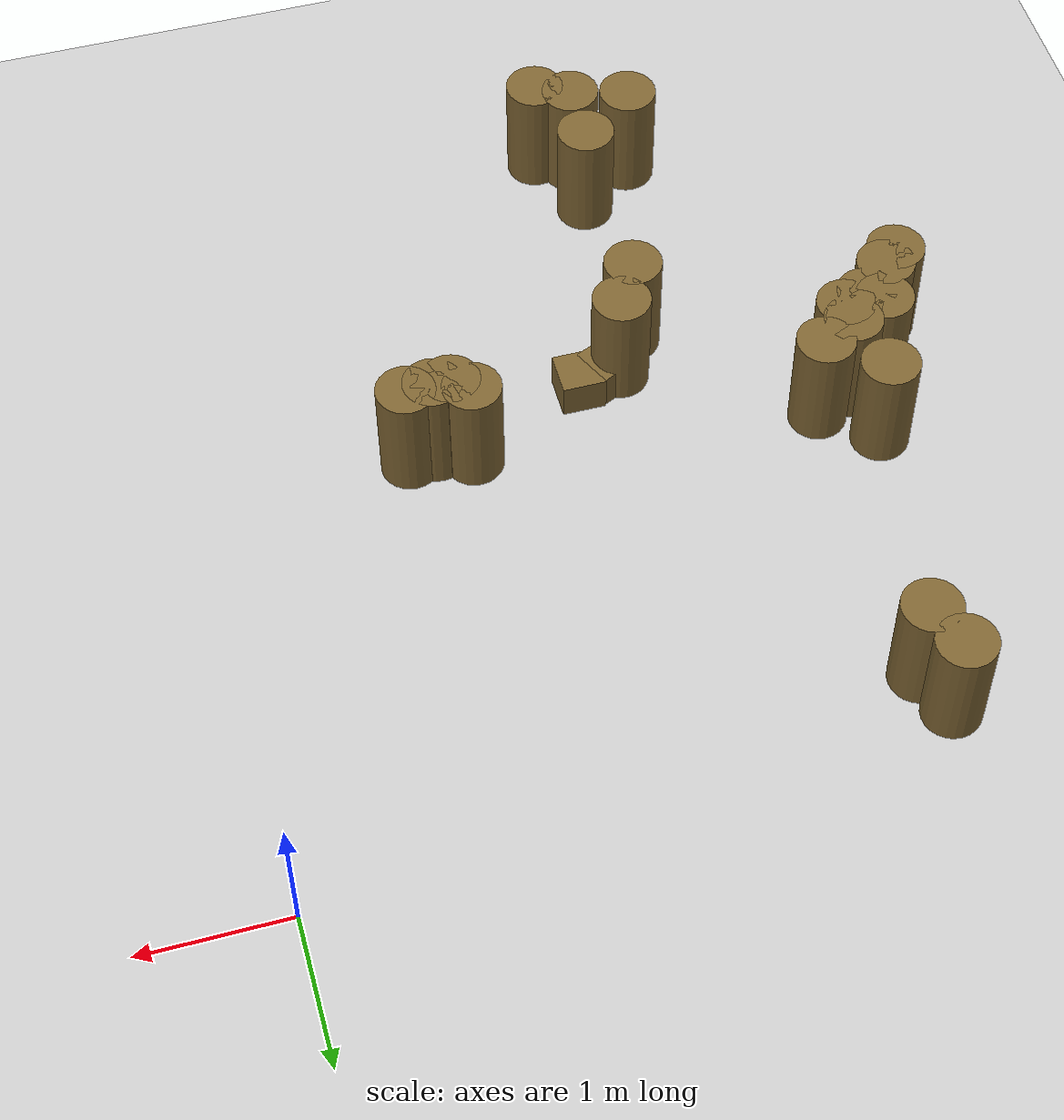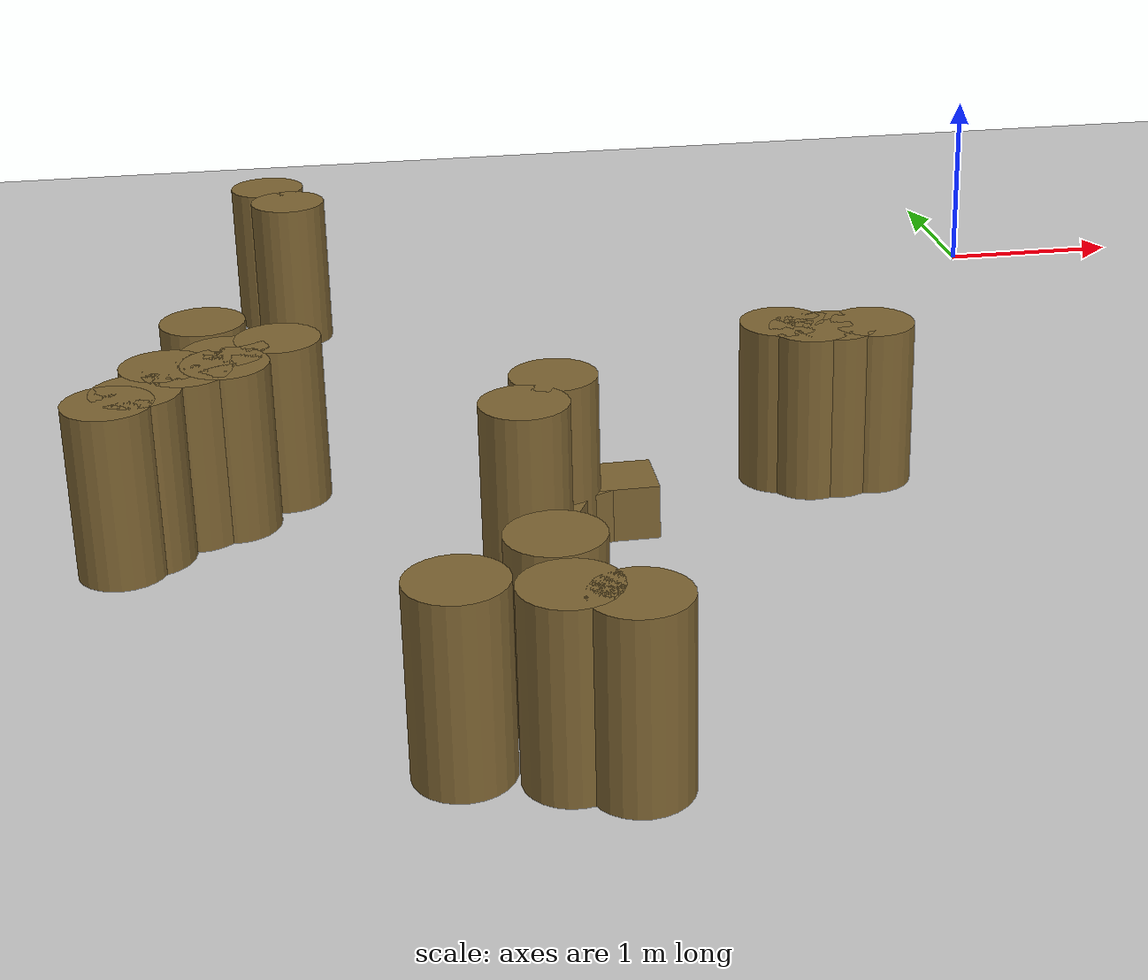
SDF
<sdf version="1.7">
 <world name="default">
  <model name="ground_plane">
   <static>1</static>
   <link name="link">
    <collision name="collision">
     <geometry><plane><normal>0 0 1</normal><size>100 100</size></plane></geometry>
     <surface><friction><ode><mu>100</mu><mu2>50</mu2></ode></friction></surface>
    </collision>
    <visual name="visual">
     <cast_shadows>0</cast_shadows>
     <geometry><plane><normal>0 0 1</normal><size>100 100</size></plane></geometry>
     <material>
      <script><uri>file://media/materials/scripts/gazebo.material</uri><name>Gazebo/Grey</name></script>
     </material>
    </visual>
   </link>
  </model>
  <model name="mini_cylinder_0_clone_0_clone_clone_clone_clone_12_clone_1">
   <link name="link">
    <inertial>
     <mass>1</mass>
     <inertia><ixx>0.145833</ixx><ixy>0</ixy><ixz>0</ixz><iyy>0.145833</iyy><iyz>0</iyz><izz>0.125</izz></inertia>
    </inertial>
    <visual name="visual">
     <geometry><cylinder><radius>0.2</radius><length>0.8</length></cylinder></geometry>
     <material>
      <script><name>Gazebo/Grey</name><uri>file://media/materials/scripts/gazebo.material</uri></script>
      <shader type="vertex"><normal_map>__default__</normal_map></shader>
      <ambient>0.5 0.4 0.2 1</ambient>
      <diffuse>0.7 0.7 0.7 1</diffuse>
      <specular>0.01 0.01 0.01 1</specular>
      <emissive>0 0 0 1</emissive>
     </material>
    </visual>
    <collision name="collision">
     <geometry><cylinder><radius>0.2</radius><length>0.8</length></cylinder></geometry>
     <surface>
      <friction>
       <ode><mu>1</mu><mu2>1</mu2><fdir1>0 0 0</fdir1><slip1>0</slip1><slip2>0</slip2></ode>
       <torsional>
        <coefficient>1</coefficient>
        <patch_radius>0</patch_radius>
        <surface_radius>0</surface_radius>
        <use_patch_radius>1</use_patch_radius>
        <ode><slip>0</slip></ode>
       </torsional>
      </friction>
      <bounce><restitution_coefficient>0</restitution_coefficient><threshold>1e+06</threshold></bounce>
      <contact>
       <collide_without_contact>0</collide_without_contact>
       <collide_without_contact_bitmask>1</collide_without_contact_bitmask>
       <collide_bitmask>1</collide_bitmask>
       <ode>
        <soft_cfm>0</soft_cfm>
        <soft_erp>0.2</soft_erp>
        <kp>1e+13</kp>
        <kd>1</kd>
        <max_vel>0.01</max_vel>
        <min_depth>0</min_depth>
       </ode>
       <bullet>
        <split_impulse>1</split_impulse>
        <split_impulse_penetration_threshold>-0.01</split_impulse_penetration_threshold>
        <soft_cfm>0</soft_cfm>
        <soft_erp>0.2</soft_erp>
        <kp>1e+13</kp>
        <kd>1</kd>
       </bullet>
      </contact>
     </surface>
    </collision>
   </link>
   <static>1</static>
   <pose>-1.42341 -3.10172 0.4 0 -0 0</pose>
  </model>
  <model name="mini_cylinder_0_clone_0_clone_clone_clone_clone_clone_28">
   <link name="link">
    <inertial>
     <mass>1</mass>
     <inertia><ixx>0.145833</ixx><ixy>0</ixy><ixz>0</ixz><iyy>0.145833</iyy><iyz>0</iyz><izz>0.125</izz></inertia>
    </inertial>
    <visual name="visual">
     <geometry><cylinder><radius>0.2</radius><length>0.8</length></cylinder></geometry>
     <material>
      <script><name>Gazebo/Grey</name><uri>file://media/materials/scripts/gazebo.material</uri></script>
      <shader type="vertex"><normal_map>__default__</normal_map></shader>
      <ambient>0.5 0.4 0.2 1</ambient>
      <diffuse>0.7 0.7 0.7 1</diffuse>
      <specular>0.01 0.01 0.01 1</specular>
      <emissive>0 0 0 1</emissive>
     </material>
    </visual>
    <collision name="collision">
     <geometry><cylinder><radius>0.2</radius><length>0.8</length></cylinder></geometry>
     <surface>
      <friction>
       <ode><mu>1</mu><mu2>1</mu2><fdir1>0 0 0</fdir1><slip1>0</slip1><slip2>0</slip2></ode>
       <torsional>
        <coefficient>1</coefficient>
        <patch_radius>0</patch_radius>
        <surface_radius>0</surface_radius>
        <use_patch_radius>1</use_patch_radius>
        <ode><slip>0</slip></ode>
       </torsional>
      </friction>
      <bounce><restitution_coefficient>0</restitution_coefficient><threshold>1e+06</threshold></bounce>
      <contact>
       <collide_without_contact>0</collide_without_contact>
       <collide_without_contact_bitmask>1</collide_without_contact_bitmask>
       <collide_bitmask>1</collide_bitmask>
       <ode>
        <soft_cfm>0</soft_cfm>
        <soft_erp>0.2</soft_erp>
        <kp>1e+13</kp>
        <kd>1</kd>
        <max_vel>0.01</max_vel>
        <min_depth>0</min_depth>
       </ode>
       <bullet>
        <split_impulse>1</split_impulse>
        <split_impulse_penetration_threshold>-0.01</split_impulse_penetration_threshold>
        <soft_cfm>0</soft_cfm>
        <soft_erp>0.2</soft_erp>
        <kp>1e+13</kp>
        <kd>1</kd>
       </bullet>
      </contact>
     </surface>
    </collision>
   </link>
   <static>1</static>
   <pose>-4.2213 -0.316603 0.4 0 -0 0</pose>
  </model>
  <model name="mini_cylinder_0_clone_0_clone_clone_clone_clone_clone_29">
   <link name="link">
    <inertial>
     <mass>1</mass>
     <inertia><ixx>0.145833</ixx><ixy>0</ixy><ixz>0</ixz><iyy>0.145833</iyy><iyz>0</iyz><izz>0.125</izz></inertia>
    </inertial>
    <visual name="visual">
     <geometry><cylinder><radius>0.2</radius><length>0.8</length></cylinder></geometry>
     <material>
      <script><name>Gazebo/Grey</name><uri>file://media/materials/scripts/gazebo.material</uri></script>
      <shader type="vertex"><normal_map>__default__</normal_map></shader>
      <ambient>0.5 0.4 0.2 1</ambient>
      <diffuse>0.7 0.7 0.7 1</diffuse>
      <specular>0.01 0.01 0.01 1</specular>
      <emissive>0 0 0 1</emissive>
     </material>
    </visual>
    <collision name="collision">
     <geometry><cylinder><radius>0.2</radius><length>0.8</length></cylinder></geometry>
     <surface>
      <friction>
       <ode><mu>1</mu><mu2>1</mu2><fdir1>0 0 0</fdir1><slip1>0</slip1><slip2>0</slip2></ode>
       <torsional>
        <coefficient>1</coefficient>
        <patch_radius>0</patch_radius>
        <surface_radius>0</surface_radius>
        <use_patch_radius>1</use_patch_radius>
        <ode><slip>0</slip></ode>
       </torsional>
      </friction>
      <bounce><restitution_coefficient>0</restitution_coefficient><threshold>1e+06</threshold></bounce>
      <contact>
       <collide_without_contact>0</collide_without_contact>
       <collide_without_contact_bitmask>1</collide_without_contact_bitmask>
       <collide_bitmask>1</collide_bitmask>
       <ode>
        <soft_cfm>0</soft_cfm>
        <soft_erp>0.2</soft_erp>
        <kp>1e+13</kp>
        <kd>1</kd>
        <max_vel>0.01</max_vel>
        <min_depth>0</min_depth>
       </ode>
       <bullet>
        <split_impulse>1</split_impulse>
        <split_impulse_penetration_threshold>-0.01</split_impulse_penetration_threshold>
        <soft_cfm>0</soft_cfm>
        <soft_erp>0.2</soft_erp>
        <kp>1e+13</kp>
        <kd>1</kd>
       </bullet>
      </contact>
     </surface>
    </collision>
   </link>
   <static>1</static>
   <pose>-4.1112 -0.615441 0.4 0 -0 0</pose>
  </model>
  <model name="mini_cylinder_0_clone_0_clone_clone_clone_clone_clone_35">
   <link name="link">
    <inertial>
     <mass>1</mass>
     <inertia><ixx>0.145833</ixx><ixy>0</ixy><ixz>0</ixz><iyy>0.145833</iyy><iyz>0</iyz><izz>0.125</izz></inertia>
    </inertial>
    <visual name="visual">
     <geometry><cylinder><radius>0.2</radius><length>0.8</length></cylinder></geometry>
     <material>
      <script><name>Gazebo/Grey</name><uri>file://media/materials/scripts/gazebo.material</uri></script>
      <shader type="vertex"><normal_map>__default__</normal_map></shader>
      <ambient>0.5 0.4 0.2 1</ambient>
      <diffuse>0.7 0.7 0.7 1</diffuse>
      <specular>0.01 0.01 0.01 1</specular>
      <emissive>0 0 0 1</emissive>
     </material>
    </visual>
    <collision name="collision">
     <geometry><cylinder><radius>0.2</radius><length>0.8</length></cylinder></geometry>
     <surface>
      <friction>
       <ode><mu>1</mu><mu2>1</mu2><fdir1>0 0 0</fdir1><slip1>0</slip1><slip2>0</slip2></ode>
       <torsional>
        <coefficient>1</coefficient>
        <patch_radius>0</patch_radius>
        <surface_radius>0</surface_radius>
        <use_patch_radius>1</use_patch_radius>
        <ode><slip>0</slip></ode>
       </torsional>
      </friction>
      <bounce><restitution_coefficient>0</restitution_coefficient><threshold>1e+06</threshold></bounce>
      <contact>
       <collide_without_contact>0</collide_without_contact>
       <collide_without_contact_bitmask>1</collide_without_contact_bitmask>
       <collide_bitmask>1</collide_bitmask>
       <ode>
        <soft_cfm>0</soft_cfm>
        <soft_erp>0.2</soft_erp>
        <kp>1e+13</kp>
        <kd>1</kd>
        <max_vel>0.01</max_vel>
        <min_depth>0</min_depth>
       </ode>
       <bullet>
        <split_impulse>1</split_impulse>
        <split_impulse_penetration_threshold>-0.01</split_impulse_penetration_threshold>
        <soft_cfm>0</soft_cfm>
        <soft_erp>0.2</soft_erp>
        <kp>1e+13</kp>
        <kd>1</kd>
       </bullet>
      </contact>
     </surface>
    </collision>
   </link>
   <static>1</static>
   <pose>-3.18297 -5.05082 0.4 0 -0 0</pose>
  </model>
  <model name="mini_cylinder_0_clone_0_clone_clone_clone_clone_clone_36">
   <link name="link">
    <inertial>
     <mass>1</mass>
     <inertia><ixx>0.145833</ixx><ixy>0</ixy><ixz>0</ixz><iyy>0.145833</iyy><iyz>0</iyz><izz>0.125</izz></inertia>
    </inertial>
    <visual name="visual">
     <geometry><cylinder><radius>0.2</radius><length>0.8</length></cylinder></geometry>
     <material>
      <script><name>Gazebo/Grey</name><uri>file://media/materials/scripts/gazebo.material</uri></script>
      <shader type="vertex"><normal_map>__default__</normal_map></shader>
      <ambient>0.5 0.4 0.2 1</ambient>
      <diffuse>0.7 0.7 0.7 1</diffuse>
      <specular>0.01 0.01 0.01 1</specular>
      <emissive>0 0 0 1</emissive>
     </material>
    </visual>
    <collision name="collision">
     <geometry><cylinder><radius>0.2</radius><length>0.8</length></cylinder></geometry>
     <surface>
      <friction>
       <ode><mu>1</mu><mu2>1</mu2><fdir1>0 0 0</fdir1><slip1>0</slip1><slip2>0</slip2></ode>
       <torsional>
        <coefficient>1</coefficient>
        <patch_radius>0</patch_radius>
        <surface_radius>0</surface_radius>
        <use_patch_radius>1</use_patch_radius>
        <ode><slip>0</slip></ode>
       </torsional>
      </friction>
      <bounce><restitution_coefficient>0</restitution_coefficient><threshold>1e+06</threshold></bounce>
      <contact>
       <collide_without_contact>0</collide_without_contact>
       <collide_without_contact_bitmask>1</collide_without_contact_bitmask>
       <collide_bitmask>1</collide_bitmask>
       <ode>
        <soft_cfm>0</soft_cfm>
        <soft_erp>0.2</soft_erp>
        <kp>1e+13</kp>
        <kd>1</kd>
        <max_vel>0.01</max_vel>
        <min_depth>0</min_depth>
       </ode>
       <bullet>
        <split_impulse>1</split_impulse>
        <split_impulse_penetration_threshold>-0.01</split_impulse_penetration_threshold>
        <soft_cfm>0</soft_cfm>
        <soft_erp>0.2</soft_erp>
        <kp>1e+13</kp>
        <kd>1</kd>
       </bullet>
      </contact>
     </surface>
    </collision>
   </link>
   <static>1</static>
   <pose>-3.57618 -5.34966 0.4 0 -0 0</pose>
  </model>
  <model name="mini_cylinder_0_clone_0_clone_clone_clone_clone_clone_37">
   <link name="link">
    <inertial>
     <mass>1</mass>
     <inertia><ixx>0.145833</ixx><ixy>0</ixy><ixz>0</ixz><iyy>0.145833</iyy><iyz>0</iyz><izz>0.125</izz></inertia>
    </inertial>
    <visual name="visual">
     <geometry><cylinder><radius>0.2</radius><length>0.8</length></cylinder></geometry>
     <material>
      <script><name>Gazebo/Grey</name><uri>file://media/materials/scripts/gazebo.material</uri></script>
      <shader type="vertex"><normal_map>__default__</normal_map></shader>
      <ambient>0.5 0.4 0.2 1</ambient>
      <diffuse>0.7 0.7 0.7 1</diffuse>
      <specular>0.01 0.01 0.01 1</specular>
      <emissive>0 0 0 1</emissive>
     </material>
    </visual>
    <collision name="collision">
     <geometry><cylinder><radius>0.2</radius><length>0.8</length></cylinder></geometry>
     <surface>
      <friction>
       <ode><mu>1</mu><mu2>1</mu2><fdir1>0 0 0</fdir1><slip1>0</slip1><slip2>0</slip2></ode>
       <torsional>
        <coefficient>1</coefficient>
        <patch_radius>0</patch_radius>
        <surface_radius>0</surface_radius>
        <use_patch_radius>1</use_patch_radius>
        <ode><slip>0</slip></ode>
       </torsional>
      </friction>
      <bounce><restitution_coefficient>0</restitution_coefficient><threshold>1e+06</threshold></bounce>
      <contact>
       <collide_without_contact>0</collide_without_contact>
       <collide_without_contact_bitmask>1</collide_without_contact_bitmask>
       <collide_bitmask>1</collide_bitmask>
       <ode>
        <soft_cfm>0</soft_cfm>
        <soft_erp>0.2</soft_erp>
        <kp>1e+13</kp>
        <kd>1</kd>
        <max_vel>0.01</max_vel>
        <min_depth>0</min_depth>
       </ode>
       <bullet>
        <split_impulse>1</split_impulse>
        <split_impulse_penetration_threshold>-0.01</split_impulse_penetration_threshold>
        <soft_cfm>0</soft_cfm>
        <soft_erp>0.2</soft_erp>
        <kp>1e+13</kp>
        <kd>1</kd>
       </bullet>
      </contact>
     </surface>
    </collision>
   </link>
   <static>1</static>
   <pose>-3.18297 -5.45976 0.4 0 -0 0</pose>
  </model>
  <model name="mini_cylinder_0_clone_0_clone_clone_clone_clone_clone_45">
   <link name="link">
    <inertial>
     <mass>1</mass>
     <inertia><ixx>0.145833</ixx><ixy>0</ixy><ixz>0</ixz><iyy>0.145833</iyy><iyz>0</iyz><izz>0.125</izz></inertia>
    </inertial>
    <visual name="visual">
     <geometry><cylinder><radius>0.2</radius><length>0.8</length></cylinder></geometry>
     <material>
      <script><name>Gazebo/Grey</name><uri>file://media/materials/scripts/gazebo.material</uri></script>
      <shader type="vertex"><normal_map>__default__</normal_map></shader>
      <ambient>0.5 0.4 0.2 1</ambient>
      <diffuse>0.7 0.7 0.7 1</diffuse>
      <specular>0.01 0.01 0.01 1</specular>
      <emissive>0 0 0 1</emissive>
     </material>
    </visual>
    <collision name="collision">
     <geometry><cylinder><radius>0.2</radius><length>0.8</length></cylinder></geometry>
     <surface>
      <friction>
       <ode><mu>1</mu><mu2>1</mu2><fdir1>0 0 0</fdir1><slip1>0</slip1><slip2>0</slip2></ode>
       <torsional>
        <coefficient>1</coefficient>
        <patch_radius>0</patch_radius>
        <surface_radius>0</surface_radius>
        <use_patch_radius>1</use_patch_radius>
        <ode><slip>0</slip></ode>
       </torsional>
      </friction>
      <bounce><restitution_coefficient>0</restitution_coefficient><threshold>1e+06</threshold></bounce>
      <contact>
       <collide_without_contact>0</collide_without_contact>
       <collide_without_contact_bitmask>1</collide_without_contact_bitmask>
       <collide_bitmask>1</collide_bitmask>
       <ode>
        <soft_cfm>0</soft_cfm>
        <soft_erp>0.2</soft_erp>
        <kp>1e+13</kp>
        <kd>1</kd>
        <max_vel>0.01</max_vel>
        <min_depth>0</min_depth>
       </ode>
       <bullet>
        <split_impulse>1</split_impulse>
        <split_impulse_penetration_threshold>-0.01</split_impulse_penetration_threshold>
        <soft_cfm>0</soft_cfm>
        <soft_erp>0.2</soft_erp>
        <kp>1e+13</kp>
        <kd>1</kd>
       </bullet>
      </contact>
     </surface>
    </collision>
   </link>
   <static>1</static>
   <pose>-4.41355 -3.05901 0.4 0 -0 0</pose>
  </model>
  <model name="mini_box_0.3_clone_9">
   <link name="link">
    <inertial>
     <mass>1</mass>
     <inertia>
      <ixx>0.166667</ixx>
      <ixy>0</ixy>
      <ixz>0</ixz>
      <iyy>0.166667</iyy>
      <iyz>0</iyz>
      <izz>0.166667</izz>
     </inertia>
    </inertial>
    <visual name="visual">
     <geometry><box><size>0.3 0.3 0.5</size></box></geometry>
     <material>
      <script><name>Gazebo/Grey</name><uri>file://media/materials/scripts/gazebo.material</uri></script>
      <shader type="vertex"><normal_map>__default__</normal_map></shader>
      <ambient>0.5 0.4 0.2 1</ambient>
      <diffuse>0.7 0.7 0.7 1</diffuse>
      <specular>0.01 0.01 0.01 1</specular>
      <emissive>0 0 0 1</emissive>
     </material>
    </visual>
    <collision name="collision">
     <geometry><box><size>0.3 0.3 0.3</size></box></geometry>
     <surface>
      <friction>
       <ode><mu>1</mu><mu2>1</mu2><fdir1>0 0 0</fdir1><slip1>0</slip1><slip2>0</slip2></ode>
       <torsional>
        <coefficient>1</coefficient>
        <patch_radius>0</patch_radius>
        <surface_radius>0</surface_radius>
        <use_patch_radius>1</use_patch_radius>
        <ode><slip>0</slip></ode>
       </torsional>
      </friction>
      <bounce><restitution_coefficient>0</restitution_coefficient><threshold>1e+06</threshold></bounce>
      <contact>
       <collide_without_contact>0</collide_without_contact>
       <collide_without_contact_bitmask>1</collide_without_contact_bitmask>
       <collide_bitmask>1</collide_bitmask>
       <ode>
        <soft_cfm>0</soft_cfm>
        <soft_erp>0.2</soft_erp>
        <kp>1e+13</kp>
        <kd>1</kd>
        <max_vel>0.01</max_vel>
        <min_depth>0</min_depth>
       </ode>
       <bullet>
        <split_impulse>1</split_impulse>
        <split_impulse_penetration_threshold>-0.01</split_impulse_penetration_threshold>
        <soft_cfm>0</soft_cfm>
        <soft_erp>0.2</soft_erp>
        <kp>1e+13</kp>
        <kd>1</kd>
       </bullet>
      </contact>
     </surface>
    </collision>
   </link>
   <static>1</static>
   <pose>-2.67643 -3.40611 0 0 -0 0</pose>
  </model>
  <model name="mini_box_0.3_clone_10">
   <link name="link">
    <inertial>
     <mass>1</mass>
     <inertia>
      <ixx>0.166667</ixx>
      <ixy>0</ixy>
      <ixz>0</ixz>
      <iyy>0.166667</iyy>
      <iyz>0</iyz>
      <izz>0.166667</izz>
     </inertia>
    </inertial>
    <visual name="visual">
     <geometry><box><size>0.3 0.3 0.5</size></box></geometry>
     <material>
      <script><name>Gazebo/Grey</name><uri>file://media/materials/scripts/gazebo.material</uri></script>
      <shader type="vertex"><normal_map>__default__</normal_map></shader>
      <ambient>0.5 0.4 0.2 1</ambient>
      <diffuse>0.7 0.7 0.7 1</diffuse>
      <specular>0.01 0.01 0.01 1</specular>
      <emissive>0 0 0 1</emissive>
     </material>
    </visual>
    <collision name="collision">
     <geometry><box><size>0.3 0.3 0.3</size></box></geometry>
     <surface>
      <friction>
       <ode><mu>1</mu><mu2>1</mu2><fdir1>0 0 0</fdir1><slip1>0</slip1><slip2>0</slip2></ode>
       <torsional>
        <coefficient>1</coefficient>
        <patch_radius>0</patch_radius>
        <surface_radius>0</surface_radius>
        <use_patch_radius>1</use_patch_radius>
        <ode><slip>0</slip></ode>
       </torsional>
      </friction>
      <bounce><restitution_coefficient>0</restitution_coefficient><threshold>1e+06</threshold></bounce>
      <contact>
       <collide_without_contact>0</collide_without_contact>
       <collide_without_contact_bitmask>1</collide_without_contact_bitmask>
       <collide_bitmask>1</collide_bitmask>
       <ode>
        <soft_cfm>0</soft_cfm>
        <soft_erp>0.2</soft_erp>
        <kp>1e+13</kp>
        <kd>1</kd>
        <max_vel>0.01</max_vel>
        <min_depth>0</min_depth>
       </ode>
       <bullet>
        <split_impulse>1</split_impulse>
        <split_impulse_penetration_threshold>-0.01</split_impulse_penetration_threshold>
        <soft_cfm>0</soft_cfm>
        <soft_erp>0.2</soft_erp>
        <kp>1e+13</kp>
        <kd>1</kd>
       </bullet>
      </contact>
     </surface>
    </collision>
   </link>
   <static>1</static>
   <pose>-2.89786 -3.46428 0 0 -0 0.442374</pose>
  </model>
  <model name="mini_box_0.3_clone_11">
   <link name="link">
    <inertial>
     <mass>1</mass>
     <inertia>
      <ixx>0.166667</ixx>
      <ixy>0</ixy>
      <ixz>0</ixz>
      <iyy>0.166667</iyy>
      <iyz>0</iyz>
      <izz>0.166667</izz>
     </inertia>
    </inertial>
    <visual name="visual">
     <geometry><box><size>0.3 0.3 0.5</size></box></geometry>
     <material>
      <script><name>Gazebo/Grey</name><uri>file://media/materials/scripts/gazebo.material</uri></script>
      <shader type="vertex"><normal_map>__default__</normal_map></shader>
      <ambient>0.5 0.4 0.2 1</ambient>
      <diffuse>0.7 0.7 0.7 1</diffuse>
      <specular>0.01 0.01 0.01 1</specular>
      <emissive>0 0 0 1</emissive>
     </material>
    </visual>
    <collision name="collision">
     <geometry><box><size>0.3 0.3 0.3</size></box></geometry>
     <surface>
      <friction>
       <ode><mu>1</mu><mu2>1</mu2><fdir1>0 0 0</fdir1><slip1>0</slip1><slip2>0</slip2></ode>
       <torsional>
        <coefficient>1</coefficient>
        <patch_radius>0</patch_radius>
        <surface_radius>0</surface_radius>
        <use_patch_radius>1</use_patch_radius>
        <ode><slip>0</slip></ode>
       </torsional>
      </friction>
      <bounce><restitution_coefficient>0</restitution_coefficient><threshold>1e+06</threshold></bounce>
      <contact>
       <collide_without_contact>0</collide_without_contact>
       <collide_without_contact_bitmask>1</collide_without_contact_bitmask>
       <collide_bitmask>1</collide_bitmask>
       <ode>
        <soft_cfm>0</soft_cfm>
        <soft_erp>0.2</soft_erp>
        <kp>1e+13</kp>
        <kd>1</kd>
        <max_vel>0.01</max_vel>
        <min_depth>0</min_depth>
       </ode>
       <bullet>
        <split_impulse>1</split_impulse>
        <split_impulse_penetration_threshold>-0.01</split_impulse_penetration_threshold>
        <soft_cfm>0</soft_cfm>
        <soft_erp>0.2</soft_erp>
        <kp>1e+13</kp>
        <kd>1</kd>
       </bullet>
      </contact>
     </surface>
    </collision>
   </link>
   <static>1</static>
   <pose>-3.01607 -3.60093 0 0 -0 1.14915</pose>
  </model>
  <model name="mini_cylinder_0_clone_0_clone_clone_clone_clone_clone_49_clone_14">
   <link name="link">
    <inertial>
     <mass>1</mass>
     <inertia><ixx>0.145833</ixx><ixy>0</ixy><ixz>0</ixz><iyy>0.145833</iyy><iyz>0</iyz><izz>0.125</izz></inertia>
    </inertial>
    <visual name="visual">
     <geometry><cylinder><radius>0.2</radius><length>0.8</length></cylinder></geometry>
     <material>
      <script><name>Gazebo/Grey</name><uri>file://media/materials/scripts/gazebo.material</uri></script>
      <shader type="vertex"><normal_map>__default__</normal_map></shader>
      <ambient>0.5 0.4 0.2 1</ambient>
      <diffuse>0.7 0.7 0.7 1</diffuse>
      <specular>0.01 0.01 0.01 1</specular>
      <emissive>0 0 0 1</emissive>
     </material>
    </visual>
    <collision name="collision">
     <geometry><cylinder><radius>0.2</radius><length>0.8</length></cylinder></geometry>
     <surface>
      <friction>
       <ode><mu>1</mu><mu2>1</mu2><fdir1>0 0 0</fdir1><slip1>0</slip1><slip2>0</slip2></ode>
       <torsional>
        <coefficient>1</coefficient>
        <patch_radius>0</patch_radius>
        <surface_radius>0</surface_radius>
        <use_patch_radius>1</use_patch_radius>
        <ode><slip>0</slip></ode>
       </torsional>
      </friction>
      <bounce><restitution_coefficient>0</restitution_coefficient><threshold>1e+06</threshold></bounce>
      <contact>
       <collide_without_contact>0</collide_without_contact>
       <collide_without_contact_bitmask>1</collide_without_contact_bitmask>
       <collide_bitmask>1</collide_bitmask>
       <ode>
        <soft_cfm>0</soft_cfm>
        <soft_erp>0.2</soft_erp>
        <kp>1e+13</kp>
        <kd>1</kd>
        <max_vel>0.01</max_vel>
        <min_depth>0</min_depth>
       </ode>
       <bullet>
        <split_impulse>1</split_impulse>
        <split_impulse_penetration_threshold>-0.01</split_impulse_penetration_threshold>
        <soft_cfm>0</soft_cfm>
        <soft_erp>0.2</soft_erp>
        <kp>1e+13</kp>
        <kd>1</kd>
       </bullet>
      </contact>
     </surface>
    </collision>
   </link>
   <static>1</static>
   <pose>-2.98809 -3.4817 0.4 0 -0 0</pose>
  </model>
  <model name="mini_cylinder_0_clone_0_clone_clone_clone_clone_clone_49_clone_15">
   <link name="link">
    <inertial>
     <mass>1</mass>
     <inertia><ixx>0.145833</ixx><ixy>0</ixy><ixz>0</ixz><iyy>0.145833</iyy><iyz>0</iyz><izz>0.125</izz></inertia>
    </inertial>
    <visual name="visual">
     <geometry><cylinder><radius>0.2</radius><length>0.8</length></cylinder></geometry>
     <material>
      <script><name>Gazebo/Grey</name><uri>file://media/materials/scripts/gazebo.material</uri></script>
      <shader type="vertex"><normal_map>__default__</normal_map></shader>
      <ambient>0.5 0.4 0.2 1</ambient>
      <diffuse>0.7 0.7 0.7 1</diffuse>
      <specular>0.01 0.01 0.01 1</specular>
      <emissive>0 0 0 1</emissive>
     </material>
    </visual>
    <collision name="collision">
     <geometry><cylinder><radius>0.2</radius><length>0.8</length></cylinder></geometry>
     <surface>
      <friction>
       <ode><mu>1</mu><mu2>1</mu2><fdir1>0 0 0</fdir1><slip1>0</slip1><slip2>0</slip2></ode>
       <torsional>
        <coefficient>1</coefficient>
        <patch_radius>0</patch_radius>
        <surface_radius>0</surface_radius>
        <use_patch_radius>1</use_patch_radius>
        <ode><slip>0</slip></ode>
       </torsional>
      </friction>
      <bounce><restitution_coefficient>0</restitution_coefficient><threshold>1e+06</threshold></bounce>
      <contact>
       <collide_without_contact>0</collide_without_contact>
       <collide_without_contact_bitmask>1</collide_without_contact_bitmask>
       <collide_bitmask>1</collide_bitmask>
       <ode>
        <soft_cfm>0</soft_cfm>
        <soft_erp>0.2</soft_erp>
        <kp>1e+13</kp>
        <kd>1</kd>
        <max_vel>0.01</max_vel>
        <min_depth>0</min_depth>
       </ode>
       <bullet>
        <split_impulse>1</split_impulse>
        <split_impulse_penetration_threshold>-0.01</split_impulse_penetration_threshold>
        <soft_cfm>0</soft_cfm>
        <soft_erp>0.2</soft_erp>
        <kp>1e+13</kp>
        <kd>1</kd>
       </bullet>
      </contact>
     </surface>
    </collision>
   </link>
   <static>1</static>
   <pose>-4.67986 -3.0423 0.4 0 -0 0</pose>
  </model>
  <model name="mini_cylinder_0_clone_0_clone_clone_clone_clone_clone_49_clone_16">
   <link name="link">
    <inertial>
     <mass>1</mass>
     <inertia><ixx>0.145833</ixx><ixy>0</ixy><ixz>0</ixz><iyy>0.145833</iyy><iyz>0</iyz><izz>0.125</izz></inertia>
    </inertial>
    <visual name="visual">
     <geometry><cylinder><radius>0.2</radius><length>0.8</length></cylinder></geometry>
     <material>
      <script><name>Gazebo/Grey</name><uri>file://media/materials/scripts/gazebo.material</uri></script>
      <shader type="vertex"><normal_map>__default__</normal_map></shader>
      <ambient>0.5 0.4 0.2 1</ambient>
      <diffuse>0.7 0.7 0.7 1</diffuse>
      <specular>0.01 0.01 0.01 1</specular>
      <emissive>0 0 0 1</emissive>
     </material>
    </visual>
    <collision name="collision">
     <geometry><cylinder><radius>0.2</radius><length>0.8</length></cylinder></geometry>
     <surface>
      <friction>
       <ode><mu>1</mu><mu2>1</mu2><fdir1>0 0 0</fdir1><slip1>0</slip1><slip2>0</slip2></ode>
       <torsional>
        <coefficient>1</coefficient>
        <patch_radius>0</patch_radius>
        <surface_radius>0</surface_radius>
        <use_patch_radius>1</use_patch_radius>
        <ode><slip>0</slip></ode>
       </torsional>
      </friction>
      <bounce><restitution_coefficient>0</restitution_coefficient><threshold>1e+06</threshold></bounce>
      <contact>
       <collide_without_contact>0</collide_without_contact>
       <collide_without_contact_bitmask>1</collide_without_contact_bitmask>
       <collide_bitmask>1</collide_bitmask>
       <ode>
        <soft_cfm>0</soft_cfm>
        <soft_erp>0.2</soft_erp>
        <kp>1e+13</kp>
        <kd>1</kd>
        <max_vel>0.01</max_vel>
        <min_depth>0</min_depth>
       </ode>
       <bullet>
        <split_impulse>1</split_impulse>
        <split_impulse_penetration_threshold>-0.01</split_impulse_penetration_threshold>
        <soft_cfm>0</soft_cfm>
        <soft_erp>0.2</soft_erp>
        <kp>1e+13</kp>
        <kd>1</kd>
       </bullet>
      </contact>
     </surface>
    </collision>
   </link>
   <static>1</static>
   <pose>-4.78969 -3.32791 0.4 0 -0 0</pose>
  </model>
  <model name="mini_cylinder_0_clone_0_clone_clone_clone_clone_clone_49_clone_17">
   <link name="link">
    <inertial>
     <mass>1</mass>
     <inertia><ixx>0.145833</ixx><ixy>0</ixy><ixz>0</ixz><iyy>0.145833</iyy><iyz>0</iyz><izz>0.125</izz></inertia>
    </inertial>
    <visual name="visual">
     <geometry><cylinder><radius>0.2</radius><length>0.8</length></cylinder></geometry>
     <material>
      <script><name>Gazebo/Grey</name><uri>file://media/materials/scripts/gazebo.material</uri></script>
      <shader type="vertex"><normal_map>__default__</normal_map></shader>
      <ambient>0.5 0.4 0.2 1</ambient>
      <diffuse>0.7 0.7 0.7 1</diffuse>
      <specular>0.01 0.01 0.01 1</specular>
      <emissive>0 0 0 1</emissive>
     </material>
    </visual>
    <collision name="collision">
     <geometry><cylinder><radius>0.2</radius><length>0.8</length></cylinder></geometry>
     <surface>
      <friction>
       <ode><mu>1</mu><mu2>1</mu2><fdir1>0 0 0</fdir1><slip1>0</slip1><slip2>0</slip2></ode>
       <torsional>
        <coefficient>1</coefficient>
        <patch_radius>0</patch_radius>
        <surface_radius>0</surface_radius>
        <use_patch_radius>1</use_patch_radius>
        <ode><slip>0</slip></ode>
       </torsional>
      </friction>
      <bounce><restitution_coefficient>0</restitution_coefficient><threshold>1e+06</threshold></bounce>
      <contact>
       <collide_without_contact>0</collide_without_contact>
       <collide_without_contact_bitmask>1</collide_without_contact_bitmask>
       <collide_bitmask>1</collide_bitmask>
       <ode>
        <soft_cfm>0</soft_cfm>
        <soft_erp>0.2</soft_erp>
        <kp>1e+13</kp>
        <kd>1</kd>
        <max_vel>0.01</max_vel>
        <min_depth>0</min_depth>
       </ode>
       <bullet>
        <split_impulse>1</split_impulse>
        <split_impulse_penetration_threshold>-0.01</split_impulse_penetration_threshold>
        <soft_cfm>0</soft_cfm>
        <soft_erp>0.2</soft_erp>
        <kp>1e+13</kp>
        <kd>1</kd>
       </bullet>
      </contact>
     </surface>
    </collision>
   </link>
   <static>1</static>
   <pose>-4.89945 -3.43775 0.4 0 -0 0</pose>
  </model>
  <model name="mini_cylinder_0_clone_0_clone_clone_clone_clone_clone_49_clone_20">
   <link name="link">
    <inertial>
     <mass>1</mass>
     <inertia><ixx>0.145833</ixx><ixy>0</ixy><ixz>0</ixz><iyy>0.145833</iyy><iyz>0</iyz><izz>0.125</izz></inertia>
    </inertial>
    <visual name="visual">
     <geometry><cylinder><radius>0.2</radius><length>0.8</length></cylinder></geometry>
     <material>
      <script><name>Gazebo/Grey</name><uri>file://media/materials/scripts/gazebo.material</uri></script>
      <shader type="vertex"><normal_map>__default__</normal_map></shader>
      <ambient>0.5 0.4 0.2 1</ambient>
      <diffuse>0.7 0.7 0.7 1</diffuse>
      <specular>0.01 0.01 0.01 1</specular>
      <emissive>0 0 0 1</emissive>
     </material>
    </visual>
    <collision name="collision">
     <geometry><cylinder><radius>0.2</radius><length>0.8</length></cylinder></geometry>
     <surface>
      <friction>
       <ode><mu>1</mu><mu2>1</mu2><fdir1>0 0 0</fdir1><slip1>0</slip1><slip2>0</slip2></ode>
       <torsional>
        <coefficient>1</coefficient>
        <patch_radius>0</patch_radius>
        <surface_radius>0</surface_radius>
        <use_patch_radius>1</use_patch_radius>
        <ode><slip>0</slip></ode>
       </torsional>
      </friction>
      <bounce><restitution_coefficient>0</restitution_coefficient><threshold>1e+06</threshold></bounce>
      <contact>
       <collide_without_contact>0</collide_without_contact>
       <collide_without_contact_bitmask>1</collide_without_contact_bitmask>
       <collide_bitmask>1</collide_bitmask>
       <ode>
        <soft_cfm>0</soft_cfm>
        <soft_erp>0.2</soft_erp>
        <kp>1e+13</kp>
        <kd>1</kd>
        <max_vel>0.01</max_vel>
        <min_depth>0</min_depth>
       </ode>
       <bullet>
        <split_impulse>1</split_impulse>
        <split_impulse_penetration_threshold>-0.01</split_impulse_penetration_threshold>
        <soft_cfm>0</soft_cfm>
        <soft_erp>0.2</soft_erp>
        <kp>1e+13</kp>
        <kd>1</kd>
       </bullet>
      </contact>
     </surface>
    </collision>
   </link>
   <static>1</static>
   <pose>-4.41624 -2.91048 0.4 0 -0 0</pose>
  </model>
  <model name="mini_cylinder_0_clone_0_clone_clone_clone_clone_clone_49_clone_21">
   <link name="link">
    <inertial>
     <mass>1</mass>
     <inertia><ixx>0.145833</ixx><ixy>0</ixy><ixz>0</ixz><iyy>0.145833</iyy><iyz>0</iyz><izz>0.125</izz></inertia>
    </inertial>
    <visual name="visual">
     <geometry><cylinder><radius>0.2</radius><length>0.8</length></cylinder></geometry>
     <material>
      <script><name>Gazebo/Grey</name><uri>file://media/materials/scripts/gazebo.material</uri></script>
      <shader type="vertex"><normal_map>__default__</normal_map></shader>
      <ambient>0.5 0.4 0.2 1</ambient>
      <diffuse>0.7 0.7 0.7 1</diffuse>
      <specular>0.01 0.01 0.01 1</specular>
      <emissive>0 0 0 1</emissive>
     </material>
    </visual>
    <collision name="collision">
     <geometry><cylinder><radius>0.2</radius><length>0.8</length></cylinder></geometry>
     <surface>
      <friction>
       <ode><mu>1</mu><mu2>1</mu2><fdir1>0 0 0</fdir1><slip1>0</slip1><slip2>0</slip2></ode>
       <torsional>
        <coefficient>1</coefficient>
        <patch_radius>0</patch_radius>
        <surface_radius>0</surface_radius>
        <use_patch_radius>1</use_patch_radius>
        <ode><slip>0</slip></ode>
       </torsional>
      </friction>
      <bounce><restitution_coefficient>0</restitution_coefficient><threshold>1e+06</threshold></bounce>
      <contact>
       <collide_without_contact>0</collide_without_contact>
       <collide_without_contact_bitmask>1</collide_without_contact_bitmask>
       <collide_bitmask>1</collide_bitmask>
       <ode>
        <soft_cfm>0</soft_cfm>
        <soft_erp>0.2</soft_erp>
        <kp>1e+13</kp>
        <kd>1</kd>
        <max_vel>0.01</max_vel>
        <min_depth>0</min_depth>
       </ode>
       <bullet>
        <split_impulse>1</split_impulse>
        <split_impulse_penetration_threshold>-0.01</split_impulse_penetration_threshold>
        <soft_cfm>0</soft_cfm>
        <soft_erp>0.2</soft_erp>
        <kp>1e+13</kp>
        <kd>1</kd>
       </bullet>
      </contact>
     </surface>
    </collision>
   </link>
   <static>1</static>
   <pose>-4.526 -2.49305 0.4 0 -0 0</pose>
  </model>
  <model name="mini_cylinder_0_clone_0_clone_clone_clone_clone_clone_49_clone_22">
   <link name="link">
    <inertial>
     <mass>1</mass>
     <inertia><ixx>0.145833</ixx><ixy>0</ixy><ixz>0</ixz><iyy>0.145833</iyy><iyz>0</iyz><izz>0.125</izz></inertia>
    </inertial>
    <visual name="visual">
     <geometry><cylinder><radius>0.2</radius><length>0.8</length></cylinder></geometry>
     <material>
      <script><name>Gazebo/Grey</name><uri>file://media/materials/scripts/gazebo.material</uri></script>
      <shader type="vertex"><normal_map>__default__</normal_map></shader>
      <ambient>0.5 0.4 0.2 1</ambient>
      <diffuse>0.7 0.7 0.7 1</diffuse>
      <specular>0.01 0.01 0.01 1</specular>
      <emissive>0 0 0 1</emissive>
     </material>
    </visual>
    <collision name="collision">
     <geometry><cylinder><radius>0.2</radius><length>0.8</length></cylinder></geometry>
     <surface>
      <friction>
       <ode><mu>1</mu><mu2>1</mu2><fdir1>0 0 0</fdir1><slip1>0</slip1><slip2>0</slip2></ode>
       <torsional>
        <coefficient>1</coefficient>
        <patch_radius>0</patch_radius>
        <surface_radius>0</surface_radius>
        <use_patch_radius>1</use_patch_radius>
        <ode><slip>0</slip></ode>
       </torsional>
      </friction>
      <bounce><restitution_coefficient>0</restitution_coefficient><threshold>1e+06</threshold></bounce>
      <contact>
       <collide_without_contact>0</collide_without_contact>
       <collide_without_contact_bitmask>1</collide_without_contact_bitmask>
       <collide_bitmask>1</collide_bitmask>
       <ode>
        <soft_cfm>0</soft_cfm>
        <soft_erp>0.2</soft_erp>
        <kp>1e+13</kp>
        <kd>1</kd>
        <max_vel>0.01</max_vel>
        <min_depth>0</min_depth>
       </ode>
       <bullet>
        <split_impulse>1</split_impulse>
        <split_impulse_penetration_threshold>-0.01</split_impulse_penetration_threshold>
        <soft_cfm>0</soft_cfm>
        <soft_erp>0.2</soft_erp>
        <kp>1e+13</kp>
        <kd>1</kd>
       </bullet>
      </contact>
     </surface>
    </collision>
   </link>
   <static>1</static>
   <pose>-3.15222 -3.77299 0.4 0 -0 0</pose>
  </model>
  <model name="mini_cylinder_0_clone_0_clone_clone_clone_clone_clone_49_clone_36">
   <link name="link">
    <inertial>
     <mass>1</mass>
     <inertia><ixx>0.145833</ixx><ixy>0</ixy><ixz>0</ixz><iyy>0.145833</iyy><iyz>0</iyz><izz>0.125</izz></inertia>
    </inertial>
    <visual name="visual">
     <geometry><cylinder><radius>0.2</radius><length>0.8</length></cylinder></geometry>
     <material>
      <script><name>Gazebo/Grey</name><uri>file://media/materials/scripts/gazebo.material</uri></script>
      <shader type="vertex"><normal_map>__default__</normal_map></shader>
      <ambient>0.5 0.4 0.2 1</ambient>
      <diffuse>0.7 0.7 0.7 1</diffuse>
      <specular>0.01 0.01 0.01 1</specular>
      <emissive>0 0 0 1</emissive>
     </material>
    </visual>
    <collision name="collision">
     <geometry><cylinder><radius>0.2</radius><length>0.8</length></cylinder></geometry>
     <surface>
      <friction>
       <ode><mu>1</mu><mu2>1</mu2><fdir1>0 0 0</fdir1><slip1>0</slip1><slip2>0</slip2></ode>
       <torsional>
        <coefficient>1</coefficient>
        <patch_radius>0</patch_radius>
        <surface_radius>0</surface_radius>
        <use_patch_radius>1</use_patch_radius>
        <ode><slip>0</slip></ode>
       </torsional>
      </friction>
      <bounce><restitution_coefficient>0</restitution_coefficient><threshold>1e+06</threshold></bounce>
      <contact>
       <collide_without_contact>0</collide_without_contact>
       <collide_without_contact_bitmask>1</collide_without_contact_bitmask>
       <collide_bitmask>1</collide_bitmask>
       <ode>
        <soft_cfm>0</soft_cfm>
        <soft_erp>0.2</soft_erp>
        <kp>1e+13</kp>
        <kd>1</kd>
        <max_vel>0.01</max_vel>
        <min_depth>0</min_depth>
       </ode>
       <bullet>
        <split_impulse>1</split_impulse>
        <split_impulse_penetration_threshold>-0.01</split_impulse_penetration_threshold>
        <soft_cfm>0</soft_cfm>
        <soft_erp>0.2</soft_erp>
        <kp>1e+13</kp>
        <kd>1</kd>
       </bullet>
      </contact>
     </surface>
    </collision>
   </link>
   <static>1</static>
   <pose>-4.57685 -3.11761 0.4 0 -0 0</pose>
  </model>
  <model name="mini_cylinder_0_clone_0_clone_clone_clone_clone_clone_49_clone_37">
   <link name="link">
    <inertial>
     <mass>1</mass>
     <inertia><ixx>0.145833</ixx><ixy>0</ixy><ixz>0</ixz><iyy>0.145833</iyy><iyz>0</iyz><izz>0.125</izz></inertia>
    </inertial>
    <visual name="visual">
     <geometry><cylinder><radius>0.2</radius><length>0.8</length></cylinder></geometry>
     <material>
      <script><name>Gazebo/Grey</name><uri>file://media/materials/scripts/gazebo.material</uri></script>
      <shader type="vertex"><normal_map>__default__</normal_map></shader>
      <ambient>0.5 0.4 0.2 1</ambient>
      <diffuse>0.7 0.7 0.7 1</diffuse>
      <specular>0.01 0.01 0.01 1</specular>
      <emissive>0 0 0 1</emissive>
     </material>
    </visual>
    <collision name="collision">
     <geometry><cylinder><radius>0.2</radius><length>0.8</length></cylinder></geometry>
     <surface>
      <friction>
       <ode><mu>1</mu><mu2>1</mu2><fdir1>0 0 0</fdir1><slip1>0</slip1><slip2>0</slip2></ode>
       <torsional>
        <coefficient>1</coefficient>
        <patch_radius>0</patch_radius>
        <surface_radius>0</surface_radius>
        <use_patch_radius>1</use_patch_radius>
        <ode><slip>0</slip></ode>
       </torsional>
      </friction>
      <bounce><restitution_coefficient>0</restitution_coefficient><threshold>1e+06</threshold></bounce>
      <contact>
       <collide_without_contact>0</collide_without_contact>
       <collide_without_contact_bitmask>1</collide_without_contact_bitmask>
       <collide_bitmask>1</collide_bitmask>
       <ode>
        <soft_cfm>0</soft_cfm>
        <soft_erp>0.2</soft_erp>
        <kp>1e+13</kp>
        <kd>1</kd>
        <max_vel>0.01</max_vel>
        <min_depth>0</min_depth>
       </ode>
       <bullet>
        <split_impulse>1</split_impulse>
        <split_impulse_penetration_threshold>-0.01</split_impulse_penetration_threshold>
        <soft_cfm>0</soft_cfm>
        <soft_erp>0.2</soft_erp>
        <kp>1e+13</kp>
        <kd>1</kd>
       </bullet>
      </contact>
     </surface>
    </collision>
   </link>
   <static>1</static>
   <pose>-1.60617 -3.11761 0.4 0 -0 0</pose>
  </model>
  <model name="mini_cylinder_0_clone_0_clone_clone_clone_clone_clone_49_clone_38">
   <link name="link">
    <inertial>
     <mass>1</mass>
     <inertia><ixx>0.145833</ixx><ixy>0</ixy><ixz>0</ixz><iyy>0.145833</iyy><iyz>0</iyz><izz>0.125</izz></inertia>
    </inertial>
    <visual name="visual">
     <geometry><cylinder><radius>0.2</radius><length>0.8</length></cylinder></geometry>
     <material>
      <script><name>Gazebo/Grey</name><uri>file://media/materials/scripts/gazebo.material</uri></script>
      <shader type="vertex"><normal_map>__default__</normal_map></shader>
      <ambient>0.5 0.4 0.2 1</ambient>
      <diffuse>0.7 0.7 0.7 1</diffuse>
      <specular>0.01 0.01 0.01 1</specular>
      <emissive>0 0 0 1</emissive>
     </material>
    </visual>
    <collision name="collision">
     <geometry><cylinder><radius>0.2</radius><length>0.8</length></cylinder></geometry>
     <surface>
      <friction>
       <ode><mu>1</mu><mu2>1</mu2><fdir1>0 0 0</fdir1><slip1>0</slip1><slip2>0</slip2></ode>
       <torsional>
        <coefficient>1</coefficient>
        <patch_radius>0</patch_radius>
        <surface_radius>0</surface_radius>
        <use_patch_radius>1</use_patch_radius>
        <ode><slip>0</slip></ode>
       </torsional>
      </friction>
      <bounce><restitution_coefficient>0</restitution_coefficient><threshold>1e+06</threshold></bounce>
      <contact>
       <collide_without_contact>0</collide_without_contact>
       <collide_without_contact_bitmask>1</collide_without_contact_bitmask>
       <collide_bitmask>1</collide_bitmask>
       <ode>
        <soft_cfm>0</soft_cfm>
        <soft_erp>0.2</soft_erp>
        <kp>1e+13</kp>
        <kd>1</kd>
        <max_vel>0.01</max_vel>
        <min_depth>0</min_depth>
       </ode>
       <bullet>
        <split_impulse>1</split_impulse>
        <split_impulse_penetration_threshold>-0.01</split_impulse_penetration_threshold>
        <soft_cfm>0</soft_cfm>
        <soft_erp>0.2</soft_erp>
        <kp>1e+13</kp>
        <kd>1</kd>
       </bullet>
      </contact>
     </surface>
    </collision>
   </link>
   <static>1</static>
   <pose>-1.72501 -3.11761 0.4 0 -0 0</pose>
  </model>
  <model name="mini_cylinder_0_clone_0_clone_clone_clone_clone_clone_49_clone_39">
   <link name="link">
    <inertial>
     <mass>1</mass>
     <inertia><ixx>0.145833</ixx><ixy>0</ixy><ixz>0</ixz><iyy>0.145833</iyy><iyz>0</iyz><izz>0.125</izz></inertia>
    </inertial>
    <visual name="visual">
     <geometry><cylinder><radius>0.2</radius><length>0.8</length></cylinder></geometry>
     <material>
      <script><name>Gazebo/Grey</name><uri>file://media/materials/scripts/gazebo.material</uri></script>
      <shader type="vertex"><normal_map>__default__</normal_map></shader>
      <ambient>0.5 0.4 0.2 1</ambient>
      <diffuse>0.7 0.7 0.7 1</diffuse>
      <specular>0.01 0.01 0.01 1</specular>
      <emissive>0 0 0 1</emissive>
     </material>
    </visual>
    <collision name="collision">
     <geometry><cylinder><radius>0.2</radius><length>0.8</length></cylinder></geometry>
     <surface>
      <friction>
       <ode><mu>1</mu><mu2>1</mu2><fdir1>0 0 0</fdir1><slip1>0</slip1><slip2>0</slip2></ode>
       <torsional>
        <coefficient>1</coefficient>
        <patch_radius>0</patch_radius>
        <surface_radius>0</surface_radius>
        <use_patch_radius>1</use_patch_radius>
        <ode><slip>0</slip></ode>
       </torsional>
      </friction>
      <bounce><restitution_coefficient>0</restitution_coefficient><threshold>1e+06</threshold></bounce>
      <contact>
       <collide_without_contact>0</collide_without_contact>
       <collide_without_contact_bitmask>1</collide_without_contact_bitmask>
       <collide_bitmask>1</collide_bitmask>
       <ode>
        <soft_cfm>0</soft_cfm>
        <soft_erp>0.2</soft_erp>
        <kp>1e+13</kp>
        <kd>1</kd>
        <max_vel>0.01</max_vel>
        <min_depth>0</min_depth>
       </ode>
       <bullet>
        <split_impulse>1</split_impulse>
        <split_impulse_penetration_threshold>-0.01</split_impulse_penetration_threshold>
        <soft_cfm>0</soft_cfm>
        <soft_erp>0.2</soft_erp>
        <kp>1e+13</kp>
        <kd>1</kd>
       </bullet>
      </contact>
     </surface>
    </collision>
   </link>
   <static>1</static>
   <pose>-1.84383 -3.01859 0.4 0 -0 0</pose>
  </model>
  <model name="mini_cylinder_0_clone_0_clone_clone_clone_clone_clone_49_clone_43">
   <link name="link">
    <inertial>
     <mass>1</mass>
     <inertia><ixx>0.145833</ixx><ixy>0</ixy><ixz>0</ixz><iyy>0.145833</iyy><iyz>0</iyz><izz>0.125</izz></inertia>
    </inertial>
    <visual name="visual">
     <geometry><cylinder><radius>0.2</radius><length>0.8</length></cylinder></geometry>
     <material>
      <script><name>Gazebo/Grey</name><uri>file://media/materials/scripts/gazebo.material</uri></script>
      <shader type="vertex"><normal_map>__default__</normal_map></shader>
      <ambient>0.5 0.4 0.2 1</ambient>
      <diffuse>0.7 0.7 0.7 1</diffuse>
      <specular>0.01 0.01 0.01 1</specular>
      <emissive>0 0 0 1</emissive>
     </material>
    </visual>
    <collision name="collision">
     <geometry><cylinder><radius>0.2</radius><length>0.8</length></cylinder></geometry>
     <surface>
      <friction>
       <ode><mu>1</mu><mu2>1</mu2><fdir1>0 0 0</fdir1><slip1>0</slip1><slip2>0</slip2></ode>
       <torsional>
        <coefficient>1</coefficient>
        <patch_radius>0</patch_radius>
        <surface_radius>0</surface_radius>
        <use_patch_radius>1</use_patch_radius>
        <ode><slip>0</slip></ode>
       </torsional>
      </friction>
      <bounce><restitution_coefficient>0</restitution_coefficient><threshold>1e+06</threshold></bounce>
      <contact>
       <collide_without_contact>0</collide_without_contact>
       <collide_without_contact_bitmask>1</collide_without_contact_bitmask>
       <collide_bitmask>1</collide_bitmask>
       <ode>
        <soft_cfm>0</soft_cfm>
        <soft_erp>0.2</soft_erp>
        <kp>1e+13</kp>
        <kd>1</kd>
        <max_vel>0.01</max_vel>
        <min_depth>0</min_depth>
       </ode>
       <bullet>
        <split_impulse>1</split_impulse>
        <split_impulse_penetration_threshold>-0.01</split_impulse_penetration_threshold>
        <soft_cfm>0</soft_cfm>
        <soft_erp>0.2</soft_erp>
        <kp>1e+13</kp>
        <kd>1</kd>
       </bullet>
      </contact>
     </surface>
    </collision>
   </link>
   <static>1</static>
   <pose>-4.18078 -2.78094 0.4 0 -0 0</pose>
  </model>
  <model name="mini_cylinder_0_clone_0_clone_clone_clone_clone_clone_49_clone_63">
   <link name="link">
    <inertial>
     <mass>1</mass>
     <inertia><ixx>0.145833</ixx><ixy>0</ixy><ixz>0</ixz><iyy>0.145833</iyy><iyz>0</iyz><izz>0.125</izz></inertia>
    </inertial>
    <visual name="visual">
     <geometry><cylinder><radius>0.2</radius><length>0.8</length></cylinder></geometry>
     <material>
      <script><name>Gazebo/Grey</name><uri>file://media/materials/scripts/gazebo.material</uri></script>
      <shader type="vertex"><normal_map>__default__</normal_map></shader>
      <ambient>0.5 0.4 0.2 1</ambient>
      <diffuse>0.7 0.7 0.7 1</diffuse>
      <specular>0.01 0.01 0.01 1</specular>
      <emissive>0 0 0 1</emissive>
     </material>
    </visual>
    <collision name="collision">
     <geometry><cylinder><radius>0.2</radius><length>0.8</length></cylinder></geometry>
     <surface>
      <friction>
       <ode><mu>1</mu><mu2>1</mu2><fdir1>0 0 0</fdir1><slip1>0</slip1><slip2>0</slip2></ode>
       <torsional>
        <coefficient>1</coefficient>
        <patch_radius>0</patch_radius>
        <surface_radius>0</surface_radius>
        <use_patch_radius>1</use_patch_radius>
        <ode><slip>0</slip></ode>
       </torsional>
      </friction>
      <bounce><restitution_coefficient>0</restitution_coefficient><threshold>1e+06</threshold></bounce>
      <contact>
       <collide_without_contact>0</collide_without_contact>
       <collide_without_contact_bitmask>1</collide_without_contact_bitmask>
       <collide_bitmask>1</collide_bitmask>
       <ode>
        <soft_cfm>0</soft_cfm>
        <soft_erp>0.2</soft_erp>
        <kp>1e+13</kp>
        <kd>1</kd>
        <max_vel>0.01</max_vel>
        <min_depth>0</min_depth>
       </ode>
       <bullet>
        <split_impulse>1</split_impulse>
        <split_impulse_penetration_threshold>-0.01</split_impulse_penetration_threshold>
        <soft_cfm>0</soft_cfm>
        <soft_erp>0.2</soft_erp>
        <kp>1e+13</kp>
        <kd>1</kd>
       </bullet>
      </contact>
     </surface>
    </collision>
   </link>
   <static>1</static>
   <pose>-2.95193 -5.57431 0.4 0 -0 0</pose>
  </model>
 </world>
</sdf>
